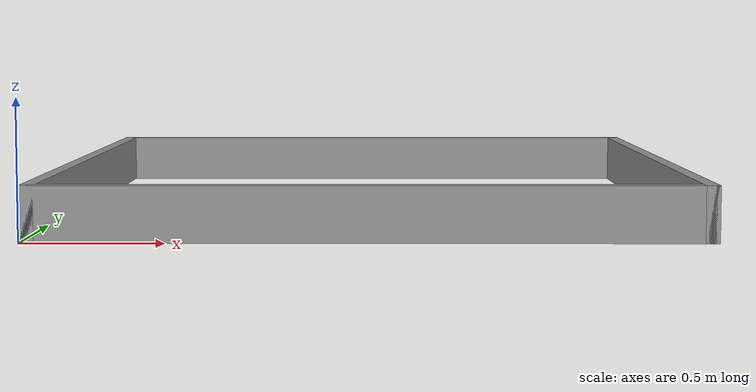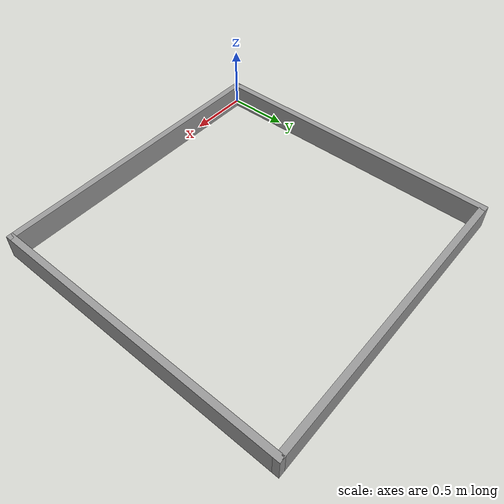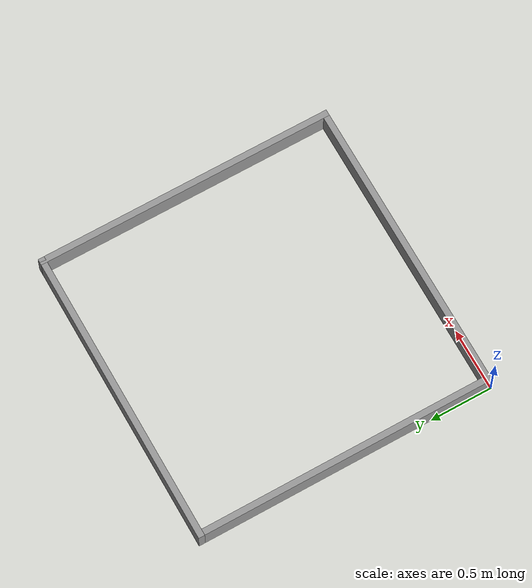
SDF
<?xml version='1.0'?>
<sdf version='1.6'>
  <model name='wro-arc_arena'>
    <pose frame=''>1.2 1.2 0 0 -0 0</pose>
    <link name='Wall_13'>
      <collision name='Wall_13_Collision'>
        <geometry>
          <box>
            <size>2.4 0.05 0.2</size>
          </box>
        </geometry>
        <pose frame=''>0 0 0.1 0 -0 0</pose>
      </collision>
      <visual name='Wall_13_Visual'>
        <pose frame=''>0 0 0.1 0 -0 0</pose>
        <geometry>
          <box>
            <size>2.4 0.05 0.2</size>
          </box>
        </geometry>
        <material>
          <script>
            <uri>file://media/materials/scripts/gazebo.material</uri>
            <name>Gazebo/Grey</name>
          </script>
          <ambient>0 0 0 1</ambient>
        </material>
      </visual>
      <pose frame=''>0 -1.175 0 0 -0 0</pose>
    </link>
    <link name='Wall_15'>
      <collision name='Wall_15_Collision'>
        <geometry>
          <box>
            <size>2.4 0.05 0.2</size>
          </box>
        </geometry>
        <pose frame=''>0 0 0.1 0 -0 0</pose>
      </collision>
      <visual name='Wall_15_Visual'>
        <pose frame=''>0 0 0.1 0 -0 0</pose>
        <geometry>
          <box>
            <size>2.4 0.05 0.2</size>
          </box>
        </geometry>
        <material>
          <script>
            <uri>file://media/materials/scripts/gazebo.material</uri>
            <name>Gazebo/Grey</name>
          </script>
          <ambient>0 0 0 1</ambient>
        </material>
      </visual>
      <pose frame=''>1.175 0 0 0 -0 1.5708</pose>
    </link>
    <link name='Wall_17'>
      <collision name='Wall_17_Collision'>
        <geometry>
          <box>
            <size>2.4 0.05 0.2</size>
          </box>
        </geometry>
        <pose frame=''>0 0 0.1 0 -0 0</pose>
      </collision>
      <visual name='Wall_17_Visual'>
        <pose frame=''>0 0 0.1 0 -0 0</pose>
        <geometry>
          <box>
            <size>2.4 0.05 0.2</size>
          </box>
        </geometry>
        <material>
          <script>
            <uri>file://media/materials/scripts/gazebo.material</uri>
            <name>Gazebo/Grey</name>
          </script>
          <ambient>0 0 0 1</ambient>
        </material>
      </visual>
      <pose frame=''>0 1.175 0 0 -0 3.14159</pose>
    </link>
    <link name='Wall_19'>
      <collision name='Wall_19_Collision'>
        <geometry>
          <box>
            <size>2.4 0.05 0.2</size>
          </box>
        </geometry>
        <pose frame=''>0 0 0.1 0 -0 0</pose>
      </collision>
      <visual name='Wall_19_Visual'>
        <pose frame=''>0 0 0.1 0 -0 0</pose>
        <geometry>
          <box>
            <size>2.4 0.05 0.2</size>
          </box>
        </geometry>
        <material>
          <script>
            <uri>file://media/materials/scripts/gazebo.material</uri>
            <name>Gazebo/Grey</name>
          </script>
          <ambient>0 0 0 1</ambient>
        </material>
      </visual>
      <pose frame=''>-1.175 0 0 0 0 -1.5708</pose>
    </link>
    <static>1</static>
  </model>
</sdf>
